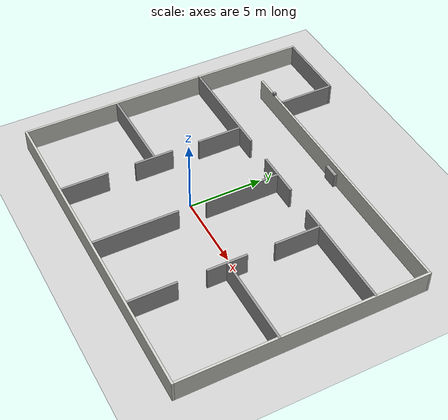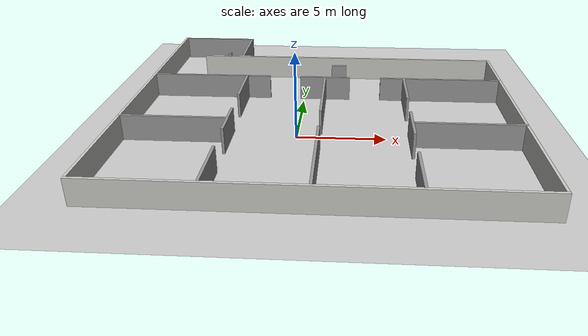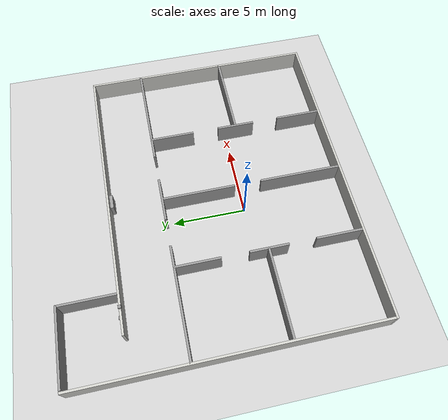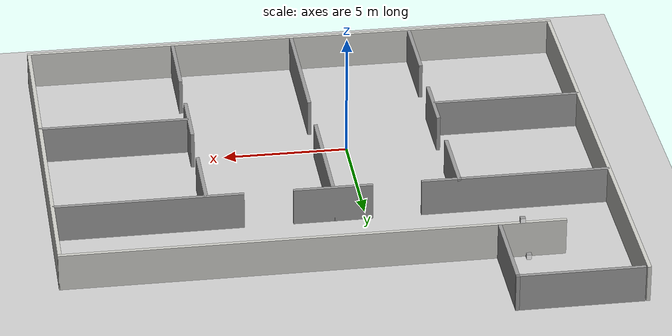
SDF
<sdf version="1.7">
 <world name="default">
  <model name="ground_plane">
   <static>1</static>
   <link name="link">
    <collision name="collision">
     <geometry><plane><normal>0 0 1</normal><size>100 100</size></plane></geometry>
     <surface>
      <contact><collide_bitmask>65535</collide_bitmask></contact>
      <friction><ode><mu>100</mu><mu2>50</mu2></ode></friction>
     </surface>
    </collision>
    <visual name="visual">
     <cast_shadows>0</cast_shadows>
     <geometry><plane><normal>0 0 1</normal><size>100 100</size></plane></geometry>
     <material>
      <script><uri>file://media/materials/scripts/gazebo.material</uri><name>Gazebo/Grey</name></script>
     </material>
    </visual>
   </link>
  </model>
  <model name="Untitled">
   <pose>1.32665 2.93009 0 0 -0 0</pose>
   <link name="Wall_0">
    <collision name="Wall_0_Collision">
     <geometry><box><size>20.15 0.15 1.5</size></box></geometry>
     <pose>0 0 0.75 0 -0 0</pose>
    </collision>
    <visual name="Wall_0_Visual">
     <pose>0 0 0.75 0 -0 0</pose>
     <geometry><box><size>20.15 0.15 1.5</size></box></geometry>
     <material>
      <script><uri>file://media/materials/scripts/gazebo.material</uri><name>Gazebo/CeilingTiled</name></script>
      <ambient>1 1 1 1</ambient>
     </material>
     <meta><layer>0</layer></meta>
    </visual>
    <pose>-11 0.074999 0 0 -0 1.5708</pose>
   </link>
   <link name="Wall_15">
    <collision name="Wall_15_Collision">
     <geometry><box><size>7.5 0.15 1.5</size></box></geometry>
     <pose>0 0 0.75 0 -0 0</pose>
    </collision>
    <visual name="Wall_15_Visual">
     <pose>0 0 0.75 0 -0 0</pose>
     <geometry><box><size>7.5 0.15 1.5</size></box></geometry>
     <material>
      <script><uri>file://media/materials/scripts/gazebo.material</uri><name>Gazebo/Grey</name></script>
      <ambient>1 1 1 1</ambient>
     </material>
     <meta><layer>0</layer></meta>
    </visual>
    <pose>7.259 2.575 0 0 -0 3.14159</pose>
   </link>
   <link name="Wall_18">
    <collision name="Wall_18_Collision">
     <geometry><box><size>3.15 0.15 1.5</size></box></geometry>
     <pose>0 0 0.75 0 -0 0</pose>
    </collision>
    <visual name="Wall_18_Visual">
     <pose>0 0 0.75 0 -0 0</pose>
     <geometry><box><size>3.15 0.15 1.5</size></box></geometry>
     <material>
      <script><uri>file://media/materials/scripts/gazebo.material</uri><name>Gazebo/Grey</name></script>
      <ambient>1 1 1 1</ambient>
     </material>
     <meta><layer>0</layer></meta>
    </visual>
    <pose>0 2.575 0 0 -0 0</pose>
   </link>
   <link name="Wall_2">
    <collision name="Wall_2_Collision">
     <geometry><box><size>16.3 0.15 1.5</size></box></geometry>
     <pose>0 0 0.75 0 -0 0</pose>
    </collision>
    <visual name="Wall_2_Visual">
     <pose>0 0 0.75 0 -0 0</pose>
     <geometry><box><size>16.3 0.15 1.5</size></box></geometry>
     <material>
      <script><uri>file://media/materials/scripts/gazebo.material</uri><name>Gazebo/CeilingTiled</name></script>
      <ambient>1 1 1 1</ambient>
     </material>
     <meta><layer>0</layer></meta>
    </visual>
    <pose>11 -1.85 0 0 -0 1.5708</pose>
   </link>
   <link name="Wall_21">
    <collision name="Wall_21_Collision">
     <geometry><box><size>3.15 0.15 1.5</size></box></geometry>
     <pose>0 0 0.75 0 -0 0</pose>
    </collision>
    <visual name="Wall_21_Visual">
     <pose>0 0 0.75 0 -0 0</pose>
     <geometry><box><size>3.15 0.15 1.5</size></box></geometry>
     <material>
      <script><uri>file://media/materials/scripts/gazebo.material</uri><name>Gazebo/Grey</name></script>
      <ambient>1 1 1 1</ambient>
     </material>
     <meta><layer>0</layer></meta>
    </visual>
    <pose>-5 1.075 0 0 -0 -1.5708</pose>
   </link>
   <link name="Wall_25">
    <collision name="Wall_25_Collision">
     <geometry><box><size>3.15 0.15 1.5</size></box></geometry>
     <pose>0 0 0.75 0 -0 0</pose>
    </collision>
    <visual name="Wall_25_Visual">
     <pose>0 0 0.75 0 -0 0</pose>
     <geometry><box><size>3.15 0.15 1.5</size></box></geometry>
     <material>
      <script><uri>file://media/materials/scripts/gazebo.material</uri><name>Gazebo/Grey</name></script>
      <ambient>1 1 1 1</ambient>
     </material>
     <meta><layer>0</layer></meta>
    </visual>
    <pose>-5 -8.425 0 0 -0 1.5708</pose>
   </link>
   <link name="Wall_27">
    <collision name="Wall_27_Collision">
     <geometry><box><size>2.65 0.15 1.5</size></box></geometry>
     <pose>0 0 0.75 0 -0 0</pose>
    </collision>
    <visual name="Wall_27_Visual">
     <pose>0 0 0.75 0 -0 0</pose>
     <geometry><box><size>2.65 0.15 1.5</size></box></geometry>
     <material>
      <script><uri>file://media/materials/scripts/gazebo.material</uri><name>Gazebo/Grey</name></script>
      <ambient>1 1 1 1</ambient>
     </material>
     <meta><layer>0</layer></meta>
    </visual>
    <pose>-5 -3.675 0 0 -0 -1.5708</pose>
   </link>
   <link name="Wall_29">
    <collision name="Wall_29_Collision">
     <geometry><box><size>6 0.15 1.5</size></box></geometry>
     <pose>0 0 0.75 0 -0 0</pose>
    </collision>
    <visual name="Wall_29_Visual">
     <pose>0 0 0.75 0 -0 0</pose>
     <geometry><box><size>6 0.15 1.5</size></box></geometry>
     <material>
      <script><uri>file://media/materials/scripts/gazebo.material</uri><name>Gazebo/Grey</name></script>
      <ambient>1 1 1 1</ambient>
     </material>
     <meta><layer>0</layer></meta>
    </visual>
    <pose>-8.017 -3.638 0 0 -0 3.14159</pose>
   </link>
   <link name="Wall_31">
    <collision name="Wall_31_Collision">
     <geometry><box><size>5.15 0.15 1.5</size></box></geometry>
     <pose>0 0 0.75 0 -0 0</pose>
    </collision>
    <visual name="Wall_31_Visual">
     <pose>0 0 0.75 0 -0 0</pose>
     <geometry><box><size>5.15 0.15 1.5</size></box></geometry>
     <material>
      <script><uri>file://media/materials/scripts/gazebo.material</uri><name>Gazebo/Grey</name></script>
      <ambient>1 1 1 1</ambient>
     </material>
     <meta><layer>0</layer></meta>
    </visual>
    <pose>0 0.074999 0 0 -0 -1.5708</pose>
   </link>
   <link name="Wall_33">
    <collision name="Wall_33_Collision">
     <geometry><box><size>5.65 0.15 1.5</size></box></geometry>
     <pose>0 0 0.75 0 -0 0</pose>
    </collision>
    <visual name="Wall_33_Visual">
     <pose>0 0 0.75 0 -0 0</pose>
     <geometry><box><size>5.65 0.15 1.5</size></box></geometry>
     <material>
      <script><uri>file://media/materials/scripts/gazebo.material</uri><name>Gazebo/Grey</name></script>
      <ambient>1 1 1 1</ambient>
     </material>
     <meta><layer>0</layer></meta>
    </visual>
    <pose>0 -7.175 0 0 -0 1.5708</pose>
   </link>
   <link name="Wall_35">
    <collision name="Wall_35_Collision">
     <geometry><box><size>3.15 0.15 1.5</size></box></geometry>
     <pose>0 0 0.75 0 -0 0</pose>
    </collision>
    <visual name="Wall_35_Visual">
     <pose>0 0 0.75 0 -0 0</pose>
     <geometry><box><size>3.15 0.15 1.5</size></box></geometry>
     <material>
      <script><uri>file://media/materials/scripts/gazebo.material</uri><name>Gazebo/Grey</name></script>
      <ambient>1 1 1 1</ambient>
     </material>
     <meta><layer>0</layer></meta>
    </visual>
    <pose>5 1.075 0 0 -0 -1.5708</pose>
   </link>
   <link name="Wall_37">
    <collision name="Wall_37_Collision">
     <geometry><box><size>2.65 0.15 1.5</size></box></geometry>
     <pose>0 0 0.75 0 -0 0</pose>
    </collision>
    <visual name="Wall_37_Visual">
     <pose>0 0 0.75 0 -0 0</pose>
     <geometry><box><size>2.65 0.15 1.5</size></box></geometry>
     <material>
      <script><uri>file://media/materials/scripts/gazebo.material</uri><name>Gazebo/Grey</name></script>
      <ambient>1 1 1 1</ambient>
     </material>
     <meta><layer>0</layer></meta>
    </visual>
    <pose>5 -3.675 0 0 -0 -1.5708</pose>
   </link>
   <link name="Wall_39">
    <collision name="Wall_39_Collision">
     <geometry><box><size>6.056 0.15 1.5</size></box></geometry>
     <pose>0 0 0.75 0 -0 0</pose>
    </collision>
    <visual name="Wall_39_Visual">
     <pose>0 0 0.75 0 -0 0</pose>
     <geometry><box><size>6.056 0.15 1.5</size></box></geometry>
     <material>
      <script><uri>file://media/materials/scripts/gazebo.material</uri><name>Gazebo/Grey</name></script>
      <ambient>1 1 1 1</ambient>
     </material>
     <meta><layer>0</layer></meta>
    </visual>
    <pose>8.047 -3.663 0 0 -0 0</pose>
   </link>
   <link name="Wall_4">
    <collision name="Wall_4_Collision">
     <geometry><box><size>19.65 0.15 1.5</size></box></geometry>
     <pose>0 0 0.75 0 -0 0</pose>
    </collision>
    <visual name="Wall_4_Visual">
     <pose>0 0 0.75 0 -0 0</pose>
     <geometry><box><size>19.65 0.15 1.5</size></box></geometry>
     <material>
      <script><uri>file://media/materials/scripts/gazebo.material</uri><name>Gazebo/CeilingTiled</name></script>
      <ambient>1 1 1 1</ambient>
     </material>
     <meta><layer>0</layer></meta>
    </visual>
    <pose>1.25 6.225 0 0 -0 0</pose>
   </link>
   <link name="Wall_42">
    <collision name="Wall_42_Collision">
     <geometry><box><size>3.15 0.15 1.5</size></box></geometry>
     <pose>0 0 0.75 0 -0 0</pose>
    </collision>
    <visual name="Wall_42_Visual">
     <pose>0 0 0.75 0 -0 0</pose>
     <geometry><box><size>3.15 0.15 1.5</size></box></geometry>
     <material>
      <script><uri>file://media/materials/scripts/gazebo.material</uri><name>Gazebo/Grey</name></script>
      <ambient>1 1 1 1</ambient>
     </material>
     <meta><layer>0</layer></meta>
    </visual>
    <pose>5 -8.425 0 0 -0 1.5708</pose>
   </link>
   <link name="Wall_45">
    <collision name="Wall_45_Collision">
     <geometry><box><size>3.841 0.15 1.5</size></box></geometry>
     <pose>0 0 0.75 0 -0 0</pose>
    </collision>
    <visual name="Wall_45_Visual">
     <pose>0 0 0.75 0 -0 0</pose>
     <geometry><box><size>3.841 0.15 1.5</size></box></geometry>
     <material>
      <script><uri>file://media/materials/scripts/gazebo.material</uri><name>Gazebo/Grey</name></script>
      <ambient>1 1 1 1</ambient>
     </material>
     <meta><layer>0</layer></meta>
    </visual>
    <pose>-5.955 8.2295 0 0 -0 1.5708</pose>
   </link>
   <link name="Wall_47">
    <collision name="Wall_47_Collision">
     <geometry><box><size>5 0.15 1.5</size></box></geometry>
     <pose>0 0 0.75 0 -0 0</pose>
    </collision>
    <visual name="Wall_47_Visual">
     <pose>0 0 0.75 0 -0 0</pose>
     <geometry><box><size>5 0.15 1.5</size></box></geometry>
     <material>
      <script><uri>file://media/materials/scripts/gazebo.material</uri><name>Gazebo/Grey</name></script>
      <ambient>1 1 1 1</ambient>
     </material>
     <meta><layer>0</layer></meta>
    </visual>
    <pose>-8.38 10.075 0 0 -0 3.14159</pose>
   </link>
   <link name="Wall_6">
    <collision name="Wall_6_Collision">
     <geometry><box><size>22.15 0.15 1.5</size></box></geometry>
     <pose>0 0 0.75 0 -0 0</pose>
    </collision>
    <visual name="Wall_6_Visual">
     <pose>0 0 0.75 0 -0 0</pose>
     <geometry><box><size>22.15 0.15 1.5</size></box></geometry>
     <material>
      <script><uri>file://media/materials/scripts/gazebo.material</uri><name>Gazebo/CeilingTiled</name></script>
      <ambient>1 1 1 1</ambient>
     </material>
     <meta><layer>0</layer></meta>
    </visual>
    <pose>0 -10.075 0 0 -0 0</pose>
   </link>
   <link name="Wall_8">
    <collision name="Wall_8_Collision">
     <geometry><box><size>7.5 0.15 1.5</size></box></geometry>
     <pose>0 0 0.75 0 -0 0</pose>
    </collision>
    <visual name="Wall_8_Visual">
     <pose>0 0 0.75 0 -0 0</pose>
     <geometry><box><size>7.5 0.15 1.5</size></box></geometry>
     <material>
      <script><uri>file://media/materials/scripts/gazebo.material</uri><name>Gazebo/Grey</name></script>
      <ambient>1 1 1 1</ambient>
     </material>
     <meta><layer>0</layer></meta>
    </visual>
    <pose>-7.253 2.575 0 0 -0 0</pose>
   </link>
   <static>1</static>
  </model>
  <model name="unit_box">
   <pose>2.14055 8.96807 0.499998 0 5e-06 -1e-05</pose>
   <link name="link">
    <inertial>
     <mass>1</mass>
     <inertia>
      <ixx>0.166667</ixx>
      <ixy>0</ixy>
      <ixz>0</ixz>
      <iyy>0.166667</iyy>
      <iyz>0</iyz>
      <izz>0.166667</izz>
     </inertia>
    </inertial>
    <collision name="collision"><geometry><box><size>1 0.224027 1</size></box></geometry></collision>
    <visual name="visual">
     <geometry><box><size>1 0.224027 1</size></box></geometry>
     <material>
      <script><name>Gazebo/Grey</name><uri>file://media/materials/scripts/gazebo.material</uri></script>
     </material>
    </visual>
   </link>
  </model>
  <model name="marker16_box">
   <link name="marker">
    <inertial>
     <mass>0.1</mass>
     <inertia><ixx>0</ixx><ixy>0</ixy><ixz>0</ixz><iyy>0</iyy><iyz>0</iyz><izz>0</izz></inertia>
    </inertial>
    <self_collide>1</self_collide>
    <pose>-0.76428 -0.101106 0.120004 -0.015521 1.56996 -0.015534</pose>
    <visual name="visual">
     <geometry><box><size>0.2 0.2 0.001</size></box></geometry>
     <material>
      <script>
       <uri>model://marker16/material/scripts</uri>
       <uri>model://marker16/material/textures</uri>
       <name>Aruco/marker16</name>
      </script>
      <shader type="pixel"><normal_map>__default__</normal_map></shader>
      <emissive>0 0 0 1</emissive>
      <ambient>1 1 1 1</ambient>
      <diffuse>1 1 1 1</diffuse>
      <specular>0 0 0 1</specular>
     </material>
    </visual>
    <collision name="collision">
     <geometry><box><size>0.2 0.2 0.02</size></box></geometry>
     <surface>
      <friction>
       <ode><mu>1</mu><mu2>1</mu2><fdir1>0 0 0</fdir1><slip1>0</slip1><slip2>0</slip2></ode>
       <torsional>
        <coefficient>1</coefficient>
        <patch_radius>0</patch_radius>
        <surface_radius>0</surface_radius>
        <use_patch_radius>1</use_patch_radius>
        <ode><slip>0</slip></ode>
       </torsional>
      </friction>
      <bounce><restitution_coefficient>0</restitution_coefficient><threshold>1e+06</threshold></bounce>
      <contact>
       <collide_without_contact>0</collide_without_contact>
       <collide_without_contact_bitmask>1</collide_without_contact_bitmask>
       <collide_bitmask>1</collide_bitmask>
       <ode>
        <soft_cfm>0</soft_cfm>
        <soft_erp>0.2</soft_erp>
        <kp>1e+13</kp>
        <kd>1</kd>
        <max_vel>0.01</max_vel>
        <min_depth>0</min_depth>
       </ode>
       <bullet>
        <split_impulse>1</split_impulse>
        <split_impulse_penetration_threshold>-0.01</split_impulse_penetration_threshold>
        <soft_cfm>0</soft_cfm>
        <soft_erp>0.2</soft_erp>
        <kp>1e+13</kp>
        <kd>1</kd>
       </bullet>
      </contact>
     </surface>
    </collision>
   </link>
   <link name="link_1">
    <inertial>
     <mass>1</mass>
     <inertia>
      <ixx>0.166667</ixx>
      <ixy>0</ixy>
      <ixz>0</ixz>
      <iyy>0.166667</iyy>
      <iyz>0</iyz>
      <izz>0.166667</izz>
     </inertia>
    </inertial>
    <pose>-0.86428 -0.101106 0.12 -1.3e-05 -4.2e-05 0</pose>
    <visual name="visual">
     <geometry><box><size>0.2 0.2 0.2</size></box></geometry>
     <material>
      <lighting>1</lighting>
      <script><uri>file://media/materials/scripts/gazebo.material</uri><name>Gazebo/Grey</name></script>
      <shader type="pixel"><normal_map>__default__</normal_map></shader>
      <emissive>0 0 0 1</emissive>
      <ambient>1 1 1 1</ambient>
      <diffuse>1 1 1 1</diffuse>
      <specular>0.01 0.01 0.01 1</specular>
     </material>
    </visual>
    <collision name="collision">
     <geometry><box><size>0.2 0.2 0.2</size></box></geometry>
     <surface>
      <friction>
       <ode><mu>1</mu><mu2>1</mu2><fdir1>0 0 0</fdir1><slip1>0</slip1><slip2>0</slip2></ode>
       <torsional>
        <coefficient>1</coefficient>
        <patch_radius>0</patch_radius>
        <surface_radius>0</surface_radius>
        <use_patch_radius>1</use_patch_radius>
        <ode><slip>0</slip></ode>
       </torsional>
      </friction>
      <bounce><restitution_coefficient>0</restitution_coefficient><threshold>1e+06</threshold></bounce>
      <contact>
       <collide_without_contact>0</collide_without_contact>
       <collide_without_contact_bitmask>1</collide_without_contact_bitmask>
       <collide_bitmask>1</collide_bitmask>
       <ode>
        <soft_cfm>0</soft_cfm>
        <soft_erp>0.2</soft_erp>
        <kp>1e+13</kp>
        <kd>1</kd>
        <max_vel>0.01</max_vel>
        <min_depth>0</min_depth>
       </ode>
       <bullet>
        <split_impulse>1</split_impulse>
        <split_impulse_penetration_threshold>-0.01</split_impulse_penetration_threshold>
        <soft_cfm>0</soft_cfm>
        <soft_erp>0.2</soft_erp>
        <kp>1e+13</kp>
        <kd>1</kd>
       </bullet>
      </contact>
     </surface>
    </collision>
   </link>
   <joint name="link_1_JOINT_3" type="fixed">
    <parent>link_1</parent>
    <child>marker</child>
    <physics>
     <ode><limit><cfm>0</cfm><erp>0.2</erp></limit><suspension><cfm>0</cfm><erp>0.2</erp></suspension></ode>
    </physics>
   </joint>
   <static>0</static>
   <pose>-5.84367 10.2618 -0.020008 1.7e-05 1.8e-05 1.54861</pose>
  </model>
  <model name="marker15_box">
   <link name="marker">
    <inertial>
     <mass>0.1</mass>
     <inertia><ixx>0</ixx><ixy>0</ixy><ixz>0</ixz><iyy>0</iyy><iyz>0</iyz><izz>0</izz></inertia>
    </inertial>
    <self_collide>1</self_collide>
    <pose>-0.76428 -0.101106 0.120004 -0.015603 1.56996 -0.015616</pose>
    <visual name="visual">
     <geometry><box><size>0.2 0.2 0.001</size></box></geometry>
     <material>
      <script>
       <uri>model://marker15/material/scripts</uri>
       <uri>model://marker15/material/textures</uri>
       <name>Aruco/marker15</name>
      </script>
      <shader type="pixel"><normal_map>__default__</normal_map></shader>
      <emissive>0 0 0 1</emissive>
      <ambient>1 1 1 1</ambient>
      <diffuse>1 1 1 1</diffuse>
      <specular>0 0 0 1</specular>
     </material>
    </visual>
    <collision name="collision">
     <geometry><box><size>0.2 0.2 0.02</size></box></geometry>
     <surface>
      <friction>
       <ode><mu>1</mu><mu2>1</mu2><fdir1>0 0 0</fdir1><slip1>0</slip1><slip2>0</slip2></ode>
       <torsional>
        <coefficient>1</coefficient>
        <patch_radius>0</patch_radius>
        <surface_radius>0</surface_radius>
        <use_patch_radius>1</use_patch_radius>
        <ode><slip>0</slip></ode>
       </torsional>
      </friction>
      <bounce><restitution_coefficient>0</restitution_coefficient><threshold>1e+06</threshold></bounce>
      <contact>
       <collide_without_contact>0</collide_without_contact>
       <collide_without_contact_bitmask>1</collide_without_contact_bitmask>
       <collide_bitmask>1</collide_bitmask>
       <ode>
        <soft_cfm>0</soft_cfm>
        <soft_erp>0.2</soft_erp>
        <kp>1e+13</kp>
        <kd>1</kd>
        <max_vel>0.01</max_vel>
        <min_depth>0</min_depth>
       </ode>
       <bullet>
        <split_impulse>1</split_impulse>
        <split_impulse_penetration_threshold>-0.01</split_impulse_penetration_threshold>
        <soft_cfm>0</soft_cfm>
        <soft_erp>0.2</soft_erp>
        <kp>1e+13</kp>
        <kd>1</kd>
       </bullet>
      </contact>
     </surface>
    </collision>
   </link>
   <link name="link_1">
    <inertial>
     <mass>1</mass>
     <inertia>
      <ixx>0.166667</ixx>
      <ixy>0</ixy>
      <ixz>0</ixz>
      <iyy>0.166667</iyy>
      <iyz>0</iyz>
      <izz>0.166667</izz>
     </inertia>
    </inertial>
    <pose>-0.86428 -0.101106 0.12 -1.3e-05 -4.2e-05 0</pose>
    <visual name="visual">
     <geometry><box><size>0.2 0.2 0.2</size></box></geometry>
     <material>
      <lighting>1</lighting>
      <script><uri>file://media/materials/scripts/gazebo.material</uri><name>Gazebo/Grey</name></script>
      <shader type="pixel"><normal_map>__default__</normal_map></shader>
      <emissive>0 0 0 1</emissive>
      <ambient>1 1 1 1</ambient>
      <diffuse>1 1 1 1</diffuse>
      <specular>0.01 0.01 0.01 1</specular>
     </material>
    </visual>
    <collision name="collision">
     <geometry><box><size>0.2 0.2 0.2</size></box></geometry>
     <surface>
      <friction>
       <ode><mu>1</mu><mu2>1</mu2><fdir1>0 0 0</fdir1><slip1>0</slip1><slip2>0</slip2></ode>
       <torsional>
        <coefficient>1</coefficient>
        <patch_radius>0</patch_radius>
        <surface_radius>0</surface_radius>
        <use_patch_radius>1</use_patch_radius>
        <ode><slip>0</slip></ode>
       </torsional>
      </friction>
      <bounce><restitution_coefficient>0</restitution_coefficient><threshold>1e+06</threshold></bounce>
      <contact>
       <collide_without_contact>0</collide_without_contact>
       <collide_without_contact_bitmask>1</collide_without_contact_bitmask>
       <collide_bitmask>1</collide_bitmask>
       <ode>
        <soft_cfm>0</soft_cfm>
        <soft_erp>0.2</soft_erp>
        <kp>1e+13</kp>
        <kd>1</kd>
        <max_vel>0.01</max_vel>
        <min_depth>0</min_depth>
       </ode>
       <bullet>
        <split_impulse>1</split_impulse>
        <split_impulse_penetration_threshold>-0.01</split_impulse_penetration_threshold>
        <soft_cfm>0</soft_cfm>
        <soft_erp>0.2</soft_erp>
        <kp>1e+13</kp>
        <kd>1</kd>
       </bullet>
      </contact>
     </surface>
    </collision>
   </link>
   <joint name="link_1_JOINT_3" type="fixed">
    <parent>link_1</parent>
    <child>marker</child>
    <physics>
     <ode><limit><cfm>0</cfm><erp>0.2</erp></limit><suspension><cfm>0</cfm><erp>0.2</erp></suspension></ode>
    </physics>
   </joint>
   <static>0</static>
   <pose>-5.6552 10.0052 1.47995 -3e-06 4.3e-05 1.60425</pose>
  </model>
 </world>
</sdf>
